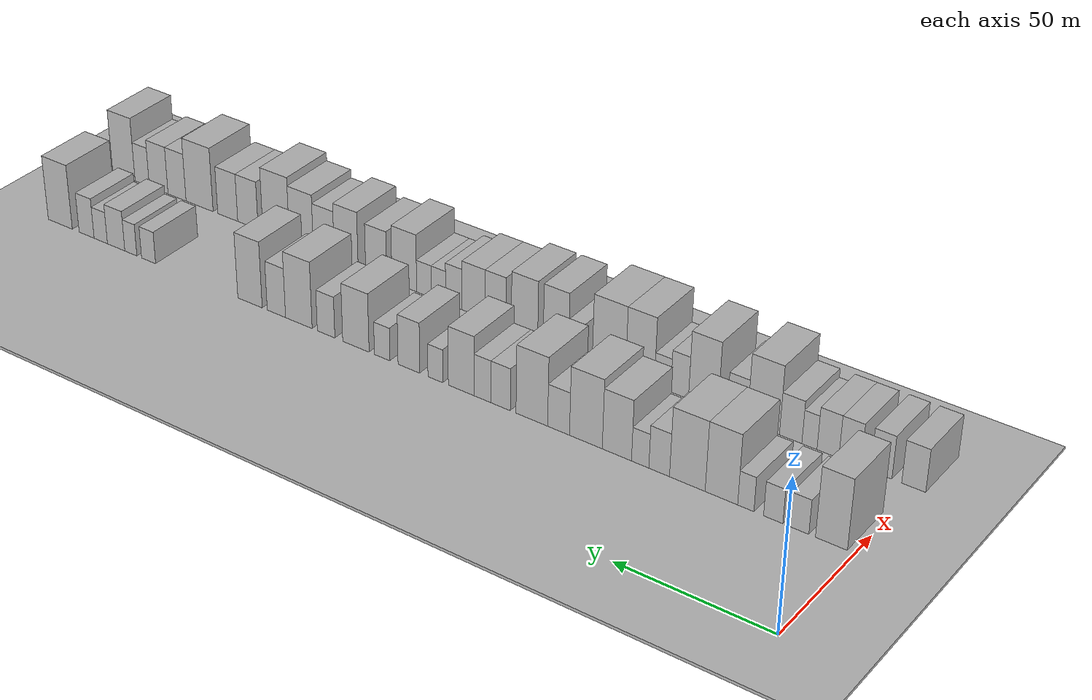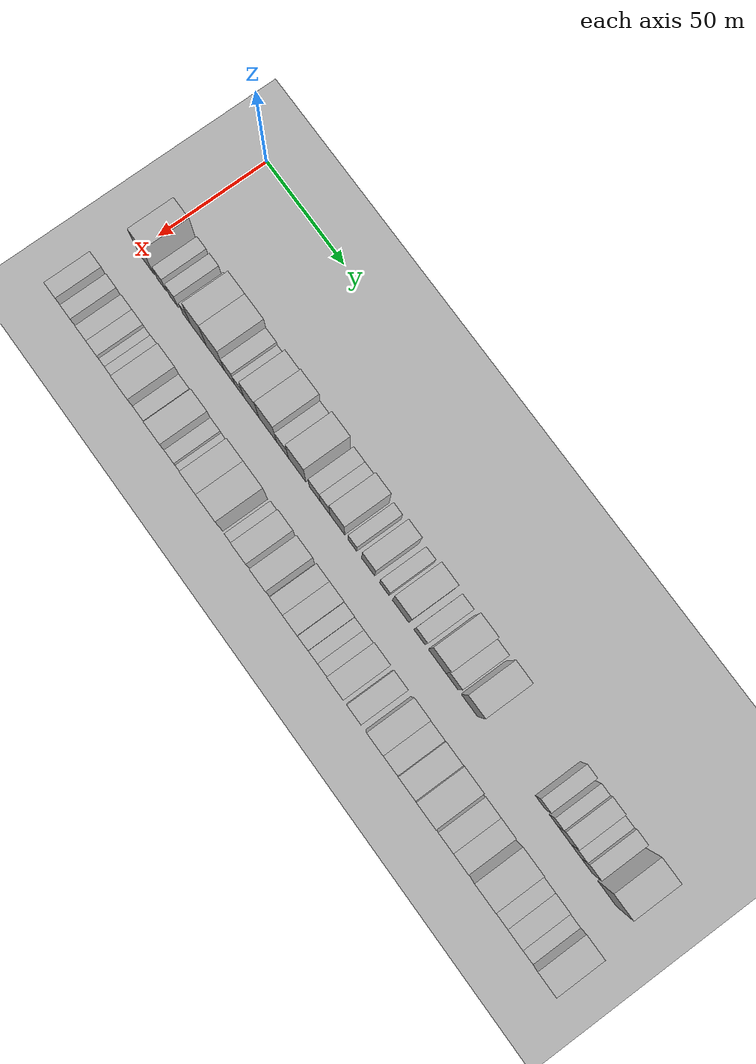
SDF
<sdf version="1.6">
 <world name="default">
  <include><name>ground_plane_1</name><uri>model://HANNAS_ground_plane</uri></include>
  <include>
   <name>ground_plane_2</name>
   <uri>model://HANNAS_ground_plane</uri>
   <pose>100 0 0  0 0 0</pose>
  </include>
  <model name="building_33">
   <static>1</static>
   <pose>50.0000 6.8137 0 0.000000 0.000000 0.000000</pose>
   <link name="link">
    <pose>0 0 12.00 0 0 0</pose>
    <collision name="collision"><geometry><box><size>20.0000 9.6309 24.0000</size></box></geometry></collision>
    <visual name="visual">
     <cast_shadows>0</cast_shadows>
     <geometry><box><size>20.0000 9.6309 24.0000</size></box></geometry>
     <material>
      <script>
       <uri>model://HANNAS_wall/materials/scripts</uri>
       <uri>model://HANNAS_wall/materials/textures</uri>
       <name>vrc/HANNAS_wall</name>
      </script>
     </material>
    </visual>
   </link>
  </model>
  <model name="building_34">
   <static>1</static>
   <pose>50.0000 16.5989 0 0.000000 0.000000 0.000000</pose>
   <link name="link">
    <pose>0 0 6.00 0 0 0</pose>
    <collision name="collision"><geometry><box><size>20.0000 5.9396 12.0000</size></box></geometry></collision>
    <visual name="visual">
     <cast_shadows>0</cast_shadows>
     <geometry><box><size>20.0000 5.9396 12.0000</size></box></geometry>
     <material>
      <script>
       <uri>model://HANNAS_wall/materials/scripts</uri>
       <uri>model://HANNAS_wall/materials/textures</uri>
       <name>vrc/HANNAS_wall</name>
      </script>
     </material>
    </visual>
   </link>
  </model>
  <model name="building_35">
   <static>1</static>
   <pose>50.0000 24.5492 0 0.000000 0.000000 0.000000</pose>
   <link name="link">
    <pose>0 0 6.00 0 0 0</pose>
    <collision name="collision"><geometry><box><size>20.0000 5.9609 12.0000</size></box></geometry></collision>
    <visual name="visual">
     <cast_shadows>0</cast_shadows>
     <geometry><box><size>20.0000 5.9609 12.0000</size></box></geometry>
     <material>
      <script>
       <uri>model://HANNAS_wall/materials/scripts</uri>
       <uri>model://HANNAS_wall/materials/textures</uri>
       <name>vrc/HANNAS_wall</name>
      </script>
     </material>
    </visual>
   </link>
  </model>
  <model name="building_36">
   <static>1</static>
   <pose>50.0000 33.0707 0 0.000000 0.000000 0.000000</pose>
   <link name="link">
    <pose>0 0 6.00 0 0 0</pose>
    <collision name="collision"><geometry><box><size>20.0000 5.0821 12.0000</size></box></geometry></collision>
    <visual name="visual">
     <cast_shadows>0</cast_shadows>
     <geometry><box><size>20.0000 5.0821 12.0000</size></box></geometry>
     <material>
      <script>
       <uri>model://HANNAS_wall/materials/scripts</uri>
       <uri>model://HANNAS_wall/materials/textures</uri>
       <name>vrc/HANNAS_wall</name>
      </script>
     </material>
    </visual>
   </link>
  </model>
  <model name="building_37">
   <static>1</static>
   <pose>50.0000 40.7650 0 0.000000 0.000000 0.000000</pose>
   <link name="link">
    <pose>0 0 12.00 0 0 0</pose>
    <collision name="collision"><geometry><box><size>20.0000 10.3065 24.0000</size></box></geometry></collision>
    <visual name="visual">
     <cast_shadows>0</cast_shadows>
     <geometry><box><size>20.0000 10.3065 24.0000</size></box></geometry>
     <material>
      <script>
       <uri>model://HANNAS_wall/materials/scripts</uri>
       <uri>model://HANNAS_wall/materials/textures</uri>
       <name>vrc/HANNAS_wall</name>
      </script>
     </material>
    </visual>
   </link>
  </model>
  <model name="building_38">
   <static>1</static>
   <pose>50.0000 51.6528 0 0.000000 0.000000 0.000000</pose>
   <link name="link">
    <pose>0 0 12.00 0 0 0</pose>
    <collision name="collision"><geometry><box><size>20.0000 11.4691 24.0000</size></box></geometry></collision>
    <visual name="visual">
     <cast_shadows>0</cast_shadows>
     <geometry><box><size>20.0000 11.4691 24.0000</size></box></geometry>
     <material>
      <script>
       <uri>model://HANNAS_wall/materials/scripts</uri>
       <uri>model://HANNAS_wall/materials/textures</uri>
       <name>vrc/HANNAS_wall</name>
      </script>
     </material>
    </visual>
   </link>
  </model>
  <model name="building_39">
   <static>1</static>
   <pose>50.0000 60.7605 0 0.000000 0.000000 0.000000</pose>
   <link name="link">
    <pose>0 0 7.50 0 0 0</pose>
    <collision name="collision"><geometry><box><size>20.0000 6.7464 15.0000</size></box></geometry></collision>
    <visual name="visual">
     <cast_shadows>0</cast_shadows>
     <geometry><box><size>20.0000 6.7464 15.0000</size></box></geometry>
     <material>
      <script>
       <uri>model://HANNAS_wall/materials/scripts</uri>
       <uri>model://HANNAS_wall/materials/textures</uri>
       <name>vrc/HANNAS_wall</name>
      </script>
     </material>
    </visual>
   </link>
  </model>
  <model name="building_40">
   <static>1</static>
   <pose>50.0000 66.9853 0 0.000000 0.000000 0.000000</pose>
   <link name="link">
    <pose>0 0 6.00 0 0 0</pose>
    <collision name="collision"><geometry><box><size>20.0000 5.7031 12.0000</size></box></geometry></collision>
    <visual name="visual">
     <cast_shadows>0</cast_shadows>
     <geometry><box><size>20.0000 5.7031 12.0000</size></box></geometry>
     <material>
      <script>
       <uri>model://HANNAS_wall/materials/scripts</uri>
       <uri>model://HANNAS_wall/materials/textures</uri>
       <name>vrc/HANNAS_wall</name>
      </script>
     </material>
    </visual>
   </link>
  </model>
  <model name="building_41">
   <static>1</static>
   <pose>50.0000 74.7066 0 0.000000 0.000000 0.000000</pose>
   <link name="link">
    <pose>0 0 10.50 0 0 0</pose>
    <collision name="collision"><geometry><box><size>20.0000 9.7396 21.0000</size></box></geometry></collision>
    <visual name="visual">
     <cast_shadows>0</cast_shadows>
     <geometry><box><size>20.0000 9.7396 21.0000</size></box></geometry>
     <material>
      <script>
       <uri>model://HANNAS_wall/materials/scripts</uri>
       <uri>model://HANNAS_wall/materials/textures</uri>
       <name>vrc/HANNAS_wall</name>
      </script>
     </material>
    </visual>
   </link>
  </model>
  <model name="building_42">
   <static>1</static>
   <pose>50.0000 85.1169 0 0.000000 0.000000 0.000000</pose>
   <link name="link">
    <pose>0 0 12.00 0 0 0</pose>
    <collision name="collision"><geometry><box><size>20.0000 11.0810 24.0000</size></box></geometry></collision>
    <visual name="visual">
     <cast_shadows>0</cast_shadows>
     <geometry><box><size>20.0000 11.0810 24.0000</size></box></geometry>
     <material>
      <script>
       <uri>model://HANNAS_wall/materials/scripts</uri>
       <uri>model://HANNAS_wall/materials/textures</uri>
       <name>vrc/HANNAS_wall</name>
      </script>
     </material>
    </visual>
   </link>
  </model>
  <model name="building_43">
   <static>1</static>
   <pose>50.0000 94.4049 0 0.000000 0.000000 0.000000</pose>
   <link name="link">
    <pose>0 0 7.50 0 0 0</pose>
    <collision name="collision"><geometry><box><size>20.0000 7.4949 15.0000</size></box></geometry></collision>
    <visual name="visual">
     <cast_shadows>0</cast_shadows>
     <geometry><box><size>20.0000 7.4949 15.0000</size></box></geometry>
     <material>
      <script>
       <uri>model://HANNAS_wall/materials/scripts</uri>
       <uri>model://HANNAS_wall/materials/textures</uri>
       <name>vrc/HANNAS_wall</name>
      </script>
     </material>
    </visual>
   </link>
  </model>
  <model name="building_44">
   <static>1</static>
   <pose>50.0000 103.6315 0 0.000000 0.000000 0.000000</pose>
   <link name="link">
    <pose>0 0 12.00 0 0 0</pose>
    <collision name="collision"><geometry><box><size>20.0000 10.9583 24.0000</size></box></geometry></collision>
    <visual name="visual">
     <cast_shadows>0</cast_shadows>
     <geometry><box><size>20.0000 10.9583 24.0000</size></box></geometry>
     <material>
      <script>
       <uri>model://HANNAS_wall/materials/scripts</uri>
       <uri>model://HANNAS_wall/materials/textures</uri>
       <name>vrc/HANNAS_wall</name>
      </script>
     </material>
    </visual>
   </link>
  </model>
  <model name="building_45">
   <static>1</static>
   <pose>50.0000 114.5147 0 0.000000 0.000000 0.000000</pose>
   <link name="link">
    <pose>0 0 7.50 0 0 0</pose>
    <collision name="collision"><geometry><box><size>20.0000 6.8081 15.0000</size></box></geometry></collision>
    <visual name="visual">
     <cast_shadows>0</cast_shadows>
     <geometry><box><size>20.0000 6.8081 15.0000</size></box></geometry>
     <material>
      <script>
       <uri>model://HANNAS_wall/materials/scripts</uri>
       <uri>model://HANNAS_wall/materials/textures</uri>
       <name>vrc/HANNAS_wall</name>
      </script>
     </material>
    </visual>
   </link>
  </model>
  <model name="building_46">
   <static>1</static>
   <pose>50.0000 120.9398 0 0.000000 0.000000 0.000000</pose>
   <link name="link">
    <pose>0 0 7.50 0 0 0</pose>
    <collision name="collision"><geometry><box><size>20.0000 6.0420 15.0000</size></box></geometry></collision>
    <visual name="visual">
     <cast_shadows>0</cast_shadows>
     <geometry><box><size>20.0000 6.0420 15.0000</size></box></geometry>
     <material>
      <script>
       <uri>model://HANNAS_wall/materials/scripts</uri>
       <uri>model://HANNAS_wall/materials/textures</uri>
       <name>vrc/HANNAS_wall</name>
      </script>
     </material>
    </visual>
   </link>
  </model>
  <model name="building_47">
   <static>1</static>
   <pose>50.0000 128.5634 0 0.000000 0.000000 0.000000</pose>
   <link name="link">
    <pose>0 0 10.50 0 0 0</pose>
    <collision name="collision"><geometry><box><size>20.0000 9.2053 21.0000</size></box></geometry></collision>
    <visual name="visual">
     <cast_shadows>0</cast_shadows>
     <geometry><box><size>20.0000 9.2053 21.0000</size></box></geometry>
     <material>
      <script>
       <uri>model://HANNAS_wall/materials/scripts</uri>
       <uri>model://HANNAS_wall/materials/textures</uri>
       <name>vrc/HANNAS_wall</name>
      </script>
     </material>
    </visual>
   </link>
  </model>
  <model name="building_48">
   <static>1</static>
   <pose>50.0000 137.8707 0 0.000000 0.000000 0.000000</pose>
   <link name="link">
    <pose>0 0 6.00 0 0 0</pose>
    <collision name="collision"><geometry><box><size>20.0000 5.4094 12.0000</size></box></geometry></collision>
    <visual name="visual">
     <cast_shadows>0</cast_shadows>
     <geometry><box><size>20.0000 5.4094 12.0000</size></box></geometry>
     <material>
      <script>
       <uri>model://HANNAS_wall/materials/scripts</uri>
       <uri>model://HANNAS_wall/materials/textures</uri>
       <name>vrc/HANNAS_wall</name>
      </script>
     </material>
    </visual>
   </link>
  </model>
  <model name="building_49">
   <static>1</static>
   <pose>50.0000 147.5816 0 0.000000 0.000000 0.000000</pose>
   <link name="link">
    <pose>0 0 9.00 0 0 0</pose>
    <collision name="collision"><geometry><box><size>20.0000 8.0123 18.0000</size></box></geometry></collision>
    <visual name="visual">
     <cast_shadows>0</cast_shadows>
     <geometry><box><size>20.0000 8.0123 18.0000</size></box></geometry>
     <material>
      <script>
       <uri>model://HANNAS_wall/materials/scripts</uri>
       <uri>model://HANNAS_wall/materials/textures</uri>
       <name>vrc/HANNAS_wall</name>
      </script>
     </material>
    </visual>
   </link>
  </model>
  <model name="building_50">
   <static>1</static>
   <pose>50.0000 157.5014 0 0.000000 0.000000 0.000000</pose>
   <link name="link">
    <pose>0 0 6.00 0 0 0</pose>
    <collision name="collision"><geometry><box><size>20.0000 5.8274 12.0000</size></box></geometry></collision>
    <visual name="visual">
     <cast_shadows>0</cast_shadows>
     <geometry><box><size>20.0000 5.8274 12.0000</size></box></geometry>
     <material>
      <script>
       <uri>model://HANNAS_wall/materials/scripts</uri>
       <uri>model://HANNAS_wall/materials/textures</uri>
       <name>vrc/HANNAS_wall</name>
      </script>
     </material>
    </visual>
   </link>
  </model>
  <model name="building_51">
   <static>1</static>
   <pose>50.0000 167.4169 0 0.000000 0.000000 0.000000</pose>
   <link name="link">
    <pose>0 0 10.50 0 0 0</pose>
    <collision name="collision"><geometry><box><size>20.0000 10.0036 21.0000</size></box></geometry></collision>
    <visual name="visual">
     <cast_shadows>0</cast_shadows>
     <geometry><box><size>20.0000 10.0036 21.0000</size></box></geometry>
     <material>
      <script>
       <uri>model://HANNAS_wall/materials/scripts</uri>
       <uri>model://HANNAS_wall/materials/textures</uri>
       <name>vrc/HANNAS_wall</name>
      </script>
     </material>
    </visual>
   </link>
  </model>
  <model name="building_52">
   <static>1</static>
   <pose>50.0000 178.7992 0 0.000000 0.000000 0.000000</pose>
   <link name="link">
    <pose>0 0 7.50 0 0 0</pose>
    <collision name="collision"><geometry><box><size>20.0000 6.7609 15.0000</size></box></geometry></collision>
    <visual name="visual">
     <cast_shadows>0</cast_shadows>
     <geometry><box><size>20.0000 6.7609 15.0000</size></box></geometry>
     <material>
      <script>
       <uri>model://HANNAS_wall/materials/scripts</uri>
       <uri>model://HANNAS_wall/materials/textures</uri>
       <name>vrc/HANNAS_wall</name>
      </script>
     </material>
    </visual>
   </link>
  </model>
  <model name="building_53">
   <static>1</static>
   <pose>50.0000 189.3770 0 0.000000 0.000000 0.000000</pose>
   <link name="link">
    <pose>0 0 12.00 0 0 0</pose>
    <collision name="collision"><geometry><box><size>20.0000 10.3947 24.0000</size></box></geometry></collision>
    <visual name="visual">
     <cast_shadows>0</cast_shadows>
     <geometry><box><size>20.0000 10.3947 24.0000</size></box></geometry>
     <material>
      <script>
       <uri>model://HANNAS_wall/materials/scripts</uri>
       <uri>model://HANNAS_wall/materials/textures</uri>
       <name>vrc/HANNAS_wall</name>
      </script>
     </material>
    </visual>
   </link>
  </model>
  <model name="building_54">
   <static>1</static>
   <pose>50.0000 198.1930 0 0.000000 0.000000 0.000000</pose>
   <link name="link">
    <pose>0 0 9.00 0 0 0</pose>
    <collision name="collision"><geometry><box><size>20.0000 7.2373 18.0000</size></box></geometry></collision>
    <visual name="visual">
     <cast_shadows>0</cast_shadows>
     <geometry><box><size>20.0000 7.2373 18.0000</size></box></geometry>
     <material>
      <script>
       <uri>model://HANNAS_wall/materials/scripts</uri>
       <uri>model://HANNAS_wall/materials/textures</uri>
       <name>vrc/HANNAS_wall</name>
      </script>
     </material>
    </visual>
   </link>
  </model>
  <model name="building_55">
   <static>1</static>
   <pose>50.0000 208.6920 0 0.000000 0.000000 0.000000</pose>
   <link name="link">
    <pose>0 0 12.00 0 0 0</pose>
    <collision name="collision"><geometry><box><size>20.0000 9.7608 24.0000</size></box></geometry></collision>
    <visual name="visual">
     <cast_shadows>0</cast_shadows>
     <geometry><box><size>20.0000 9.7608 24.0000</size></box></geometry>
     <material>
      <script>
       <uri>model://HANNAS_wall/materials/scripts</uri>
       <uri>model://HANNAS_wall/materials/textures</uri>
       <name>vrc/HANNAS_wall</name>
      </script>
     </material>
    </visual>
   </link>
  </model>
  <model name="building_56">
   <static>1</static>
   <pose>50.0000 250.4805 0 0.000000 0.000000 0.000000</pose>
   <link name="link">
    <pose>0 0 6.00 0 0 0</pose>
    <collision name="collision"><geometry><box><size>20.0000 5.9388 12.0000</size></box></geometry></collision>
    <visual name="visual">
     <cast_shadows>0</cast_shadows>
     <geometry><box><size>20.0000 5.9388 12.0000</size></box></geometry>
     <material>
      <script>
       <uri>model://HANNAS_wall/materials/scripts</uri>
       <uri>model://HANNAS_wall/materials/textures</uri>
       <name>vrc/HANNAS_wall</name>
      </script>
     </material>
    </visual>
   </link>
  </model>
  <model name="building_57">
   <static>1</static>
   <pose>50.0000 258.0265 0 0.000000 0.000000 0.000000</pose>
   <link name="link">
    <pose>0 0 6.00 0 0 0</pose>
    <collision name="collision"><geometry><box><size>20.0000 5.1532 12.0000</size></box></geometry></collision>
    <visual name="visual">
     <cast_shadows>0</cast_shadows>
     <geometry><box><size>20.0000 5.1532 12.0000</size></box></geometry>
     <material>
      <script>
       <uri>model://HANNAS_wall/materials/scripts</uri>
       <uri>model://HANNAS_wall/materials/textures</uri>
       <name>vrc/HANNAS_wall</name>
      </script>
     </material>
    </visual>
   </link>
  </model>
  <model name="building_58">
   <static>1</static>
   <pose>50.0000 264.3481 0 0.000000 0.000000 0.000000</pose>
   <link name="link">
    <pose>0 0 7.50 0 0 0</pose>
    <collision name="collision"><geometry><box><size>20.0000 7.4902 15.0000</size></box></geometry></collision>
    <visual name="visual">
     <cast_shadows>0</cast_shadows>
     <geometry><box><size>20.0000 7.4902 15.0000</size></box></geometry>
     <material>
      <script>
       <uri>model://HANNAS_wall/materials/scripts</uri>
       <uri>model://HANNAS_wall/materials/textures</uri>
       <name>vrc/HANNAS_wall</name>
      </script>
     </material>
    </visual>
   </link>
  </model>
  <model name="building_59">
   <static>1</static>
   <pose>50.0000 270.9961 0 0.000000 0.000000 0.000000</pose>
   <link name="link">
    <pose>0 0 6.00 0 0 0</pose>
    <collision name="collision"><geometry><box><size>20.0000 5.8058 12.0000</size></box></geometry></collision>
    <visual name="visual">
     <cast_shadows>0</cast_shadows>
     <geometry><box><size>20.0000 5.8058 12.0000</size></box></geometry>
     <material>
      <script>
       <uri>model://HANNAS_wall/materials/scripts</uri>
       <uri>model://HANNAS_wall/materials/textures</uri>
       <name>vrc/HANNAS_wall</name>
      </script>
     </material>
    </visual>
   </link>
  </model>
  <model name="building_60">
   <static>1</static>
   <pose>50.0000 277.1734 0 0.000000 0.000000 0.000000</pose>
   <link name="link">
    <pose>0 0 7.50 0 0 0</pose>
    <collision name="collision"><geometry><box><size>20.0000 6.5488 15.0000</size></box></geometry></collision>
    <visual name="visual">
     <cast_shadows>0</cast_shadows>
     <geometry><box><size>20.0000 6.5488 15.0000</size></box></geometry>
     <material>
      <script>
       <uri>model://HANNAS_wall/materials/scripts</uri>
       <uri>model://HANNAS_wall/materials/textures</uri>
       <name>vrc/HANNAS_wall</name>
      </script>
     </material>
    </visual>
   </link>
  </model>
  <model name="building_61">
   <static>1</static>
   <pose>50.0000 288.7738 0 0.000000 0.000000 0.000000</pose>
   <link name="link">
    <pose>0 0 12.00 0 0 0</pose>
    <collision name="collision"><geometry><box><size>20.0000 10.6521 24.0000</size></box></geometry></collision>
    <visual name="visual">
     <cast_shadows>0</cast_shadows>
     <geometry><box><size>20.0000 10.6521 24.0000</size></box></geometry>
     <material>
      <script>
       <uri>model://HANNAS_wall/materials/scripts</uri>
       <uri>model://HANNAS_wall/materials/textures</uri>
       <name>vrc/HANNAS_wall</name>
      </script>
     </material>
    </visual>
   </link>
  </model>
  <model name="building_94">
   <static>1</static>
   <pose>85.0000 0.4489 0 0.000000 0.000000 0.000000</pose>
   <link name="link">
    <pose>0 0 7.50 0 0 0</pose>
    <collision name="collision"><geometry><box><size>20.0000 7.3271 15.0000</size></box></geometry></collision>
    <visual name="visual">
     <cast_shadows>0</cast_shadows>
     <geometry><box><size>20.0000 7.3271 15.0000</size></box></geometry>
     <material>
      <script>
       <uri>model://HANNAS_wall/materials/scripts</uri>
       <uri>model://HANNAS_wall/materials/textures</uri>
       <name>vrc/HANNAS_wall</name>
      </script>
     </material>
    </visual>
   </link>
  </model>
  <model name="building_95">
   <static>1</static>
   <pose>85.0000 10.4039 0 0.000000 0.000000 0.000000</pose>
   <link name="link">
    <pose>0 0 7.50 0 0 0</pose>
    <collision name="collision"><geometry><box><size>20.0000 6.5830 15.0000</size></box></geometry></collision>
    <visual name="visual">
     <cast_shadows>0</cast_shadows>
     <geometry><box><size>20.0000 6.5830 15.0000</size></box></geometry>
     <material>
      <script>
       <uri>model://HANNAS_wall/materials/scripts</uri>
       <uri>model://HANNAS_wall/materials/textures</uri>
       <name>vrc/HANNAS_wall</name>
      </script>
     </material>
    </visual>
   </link>
  </model>
  <model name="building_96">
   <static>1</static>
   <pose>85.0000 20.1801 0 0.000000 0.000000 0.000000</pose>
   <link name="link">
    <pose>0 0 7.50 0 0 0</pose>
    <collision name="collision"><geometry><box><size>20.0000 6.9695 15.0000</size></box></geometry></collision>
    <visual name="visual">
     <cast_shadows>0</cast_shadows>
     <geometry><box><size>20.0000 6.9695 15.0000</size></box></geometry>
     <material>
      <script>
       <uri>model://HANNAS_wall/materials/scripts</uri>
       <uri>model://HANNAS_wall/materials/textures</uri>
       <name>vrc/HANNAS_wall</name>
      </script>
     </material>
    </visual>
   </link>
  </model>
  <model name="building_97">
   <static>1</static>
   <pose>85.0000 27.1184 0 0.000000 0.000000 0.000000</pose>
   <link name="link">
    <pose>0 0 7.50 0 0 0</pose>
    <collision name="collision"><geometry><box><size>20.0000 6.9072 15.0000</size></box></geometry></collision>
    <visual name="visual">
     <cast_shadows>0</cast_shadows>
     <geometry><box><size>20.0000 6.9072 15.0000</size></box></geometry>
     <material>
      <script>
       <uri>model://HANNAS_wall/materials/scripts</uri>
       <uri>model://HANNAS_wall/materials/textures</uri>
       <name>vrc/HANNAS_wall</name>
      </script>
     </material>
    </visual>
   </link>
  </model>
  <model name="building_98">
   <static>1</static>
   <pose>85.0000 32.9930 0 0.000000 0.000000 0.000000</pose>
   <link name="link">
    <pose>0 0 6.00 0 0 0</pose>
    <collision name="collision"><geometry><box><size>20.0000 4.8420 12.0000</size></box></geometry></collision>
    <visual name="visual">
     <cast_shadows>0</cast_shadows>
     <geometry><box><size>20.0000 4.8420 12.0000</size></box></geometry>
     <material>
      <script>
       <uri>model://HANNAS_wall/materials/scripts</uri>
       <uri>model://HANNAS_wall/materials/textures</uri>
       <name>vrc/HANNAS_wall</name>
      </script>
     </material>
    </visual>
   </link>
  </model>
  <model name="building_99">
   <static>1</static>
   <pose>85.0000 39.0330 0 0.000000 0.000000 0.000000</pose>
   <link name="link">
    <pose>0 0 7.50 0 0 0</pose>
    <collision name="collision"><geometry><box><size>20.0000 7.2379 15.0000</size></box></geometry></collision>
    <visual name="visual">
     <cast_shadows>0</cast_shadows>
     <geometry><box><size>20.0000 7.2379 15.0000</size></box></geometry>
     <material>
      <script>
       <uri>model://HANNAS_wall/materials/scripts</uri>
       <uri>model://HANNAS_wall/materials/textures</uri>
       <name>vrc/HANNAS_wall</name>
      </script>
     </material>
    </visual>
   </link>
  </model>
  <model name="building_100">
   <static>1</static>
   <pose>85.0000 47.8926 0 0.000000 0.000000 0.000000</pose>
   <link name="link">
    <pose>0 0 12.00 0 0 0</pose>
    <collision name="collision"><geometry><box><size>20.0000 10.4815 24.0000</size></box></geometry></collision>
    <visual name="visual">
     <cast_shadows>0</cast_shadows>
     <geometry><box><size>20.0000 10.4815 24.0000</size></box></geometry>
     <material>
      <script>
       <uri>model://HANNAS_wall/materials/scripts</uri>
       <uri>model://HANNAS_wall/materials/textures</uri>
       <name>vrc/HANNAS_wall</name>
      </script>
     </material>
    </visual>
   </link>
  </model>
  <model name="building_101">
   <static>1</static>
   <pose>85.0000 56.4817 0 0.000000 0.000000 0.000000</pose>
   <link name="link">
    <pose>0 0 7.50 0 0 0</pose>
    <collision name="collision"><geometry><box><size>20.0000 6.6966 15.0000</size></box></geometry></collision>
    <visual name="visual">
     <cast_shadows>0</cast_shadows>
     <geometry><box><size>20.0000 6.6966 15.0000</size></box></geometry>
     <material>
      <script>
       <uri>model://HANNAS_wall/materials/scripts</uri>
       <uri>model://HANNAS_wall/materials/textures</uri>
       <name>vrc/HANNAS_wall</name>
      </script>
     </material>
    </visual>
   </link>
  </model>
  <model name="building_102">
   <static>1</static>
   <pose>85.0000 67.8008 0 0.000000 0.000000 0.000000</pose>
   <link name="link">
    <pose>0 0 12.00 0 0 0</pose>
    <collision name="collision"><geometry><box><size>20.0000 9.9417 24.0000</size></box></geometry></collision>
    <visual name="visual">
     <cast_shadows>0</cast_shadows>
     <geometry><box><size>20.0000 9.9417 24.0000</size></box></geometry>
     <material>
      <script>
       <uri>model://HANNAS_wall/materials/scripts</uri>
       <uri>model://HANNAS_wall/materials/textures</uri>
       <name>vrc/HANNAS_wall</name>
      </script>
     </material>
    </visual>
   </link>
  </model>
  <model name="building_103">
   <static>1</static>
   <pose>85.0000 75.7834 0 0.000000 0.000000 0.000000</pose>
   <link name="link">
    <pose>0 0 7.50 0 0 0</pose>
    <collision name="collision"><geometry><box><size>20.0000 6.0234 15.0000</size></box></geometry></collision>
    <visual name="visual">
     <cast_shadows>0</cast_shadows>
     <geometry><box><size>20.0000 6.0234 15.0000</size></box></geometry>
     <material>
      <script>
       <uri>model://HANNAS_wall/materials/scripts</uri>
       <uri>model://HANNAS_wall/materials/textures</uri>
       <name>vrc/HANNAS_wall</name>
      </script>
     </material>
    </visual>
   </link>
  </model>
  <model name="building_104">
   <static>1</static>
   <pose>85.0000 81.6017 0 0.000000 0.000000 0.000000</pose>
   <link name="link">
    <pose>0 0 6.00 0 0 0</pose>
    <collision name="collision"><geometry><box><size>20.0000 5.6132 12.0000</size></box></geometry></collision>
    <visual name="visual">
     <cast_shadows>0</cast_shadows>
     <geometry><box><size>20.0000 5.6132 12.0000</size></box></geometry>
     <material>
      <script>
       <uri>model://HANNAS_wall/materials/scripts</uri>
       <uri>model://HANNAS_wall/materials/textures</uri>
       <name>vrc/HANNAS_wall</name>
      </script>
     </material>
    </visual>
   </link>
  </model>
  <model name="building_105">
   <static>1</static>
   <pose>85.0000 89.3883 0 0.000000 0.000000 0.000000</pose>
   <link name="link">
    <pose>0 0 12.00 0 0 0</pose>
    <collision name="collision"><geometry><box><size>20.0000 9.9600 24.0000</size></box></geometry></collision>
    <visual name="visual">
     <cast_shadows>0</cast_shadows>
     <geometry><box><size>20.0000 9.9600 24.0000</size></box></geometry>
     <material>
      <script>
       <uri>model://HANNAS_wall/materials/scripts</uri>
       <uri>model://HANNAS_wall/materials/textures</uri>
       <name>vrc/HANNAS_wall</name>
      </script>
     </material>
    </visual>
   </link>
  </model>
  <model name="building_106">
   <static>1</static>
   <pose>85.0000 100.2218 0 0.000000 0.000000 0.000000</pose>
   <link name="link">
    <pose>0 0 12.00 0 0 0</pose>
    <collision name="collision"><geometry><box><size>20.0000 11.7071 24.0000</size></box></geometry></collision>
    <visual name="visual">
     <cast_shadows>0</cast_shadows>
     <geometry><box><size>20.0000 11.7071 24.0000</size></box></geometry>
     <material>
      <script>
       <uri>model://HANNAS_wall/materials/scripts</uri>
       <uri>model://HANNAS_wall/materials/textures</uri>
       <name>vrc/HANNAS_wall</name>
      </script>
     </material>
    </visual>
   </link>
  </model>
  <model name="building_107">
   <static>1</static>
   <pose>85.0000 111.8036 0 0.000000 0.000000 0.000000</pose>
   <link name="link">
    <pose>0 0 6.00 0 0 0</pose>
    <collision name="collision"><geometry><box><size>20.0000 5.4563 12.0000</size></box></geometry></collision>
    <visual name="visual">
     <cast_shadows>0</cast_shadows>
     <geometry><box><size>20.0000 5.4563 12.0000</size></box></geometry>
     <material>
      <script>
       <uri>model://HANNAS_wall/materials/scripts</uri>
       <uri>model://HANNAS_wall/materials/textures</uri>
       <name>vrc/HANNAS_wall</name>
      </script>
     </material>
    </visual>
   </link>
  </model>
  <model name="building_108">
   <static>1</static>
   <pose>85.0000 119.0933 0 0.000000 0.000000 0.000000</pose>
   <link name="link">
    <pose>0 0 10.50 0 0 0</pose>
    <collision name="collision"><geometry><box><size>20.0000 9.1231 21.0000</size></box></geometry></collision>
    <visual name="visual">
     <cast_shadows>0</cast_shadows>
     <geometry><box><size>20.0000 9.1231 21.0000</size></box></geometry>
     <material>
      <script>
       <uri>model://HANNAS_wall/materials/scripts</uri>
       <uri>model://HANNAS_wall/materials/textures</uri>
       <name>vrc/HANNAS_wall</name>
      </script>
     </material>
    </visual>
   </link>
  </model>
  <model name="building_109">
   <static>1</static>
   <pose>85.0000 130.4917 0 0.000000 0.000000 0.000000</pose>
   <link name="link">
    <pose>0 0 10.50 0 0 0</pose>
    <collision name="collision"><geometry><box><size>20.0000 9.6737 21.0000</size></box></geometry></collision>
    <visual name="visual">
     <cast_shadows>0</cast_shadows>
     <geometry><box><size>20.0000 9.6737 21.0000</size></box></geometry>
     <material>
      <script>
       <uri>model://HANNAS_wall/materials/scripts</uri>
       <uri>model://HANNAS_wall/materials/textures</uri>
       <name>vrc/HANNAS_wall</name>
      </script>
     </material>
    </visual>
   </link>
  </model>
  <model name="building_110">
   <static>1</static>
   <pose>85.0000 141.1935 0 0.000000 0.000000 0.000000</pose>
   <link name="link">
    <pose>0 0 9.00 0 0 0</pose>
    <collision name="collision"><geometry><box><size>20.0000 7.7298 18.0000</size></box></geometry></collision>
    <visual name="visual">
     <cast_shadows>0</cast_shadows>
     <geometry><box><size>20.0000 7.7298 18.0000</size></box></geometry>
     <material>
      <script>
       <uri>model://HANNAS_wall/materials/scripts</uri>
       <uri>model://HANNAS_wall/materials/textures</uri>
       <name>vrc/HANNAS_wall</name>
      </script>
     </material>
    </visual>
   </link>
  </model>
  <model name="building_111">
   <static>1</static>
   <pose>85.0000 149.3701 0 0.000000 0.000000 0.000000</pose>
   <link name="link">
    <pose>0 0 9.00 0 0 0</pose>
    <collision name="collision"><geometry><box><size>20.0000 8.6235 18.0000</size></box></geometry></collision>
    <visual name="visual">
     <cast_shadows>0</cast_shadows>
     <geometry><box><size>20.0000 8.6235 18.0000</size></box></geometry>
     <material>
      <script>
       <uri>model://HANNAS_wall/materials/scripts</uri>
       <uri>model://HANNAS_wall/materials/textures</uri>
       <name>vrc/HANNAS_wall</name>
      </script>
     </material>
    </visual>
   </link>
  </model>
  <model name="building_112">
   <static>1</static>
   <pose>85.0000 156.8051 0 0.000000 0.000000 0.000000</pose>
   <link name="link">
    <pose>0 0 7.50 0 0 0</pose>
    <collision name="collision"><geometry><box><size>20.0000 6.2465 15.0000</size></box></geometry></collision>
    <visual name="visual">
     <cast_shadows>0</cast_shadows>
     <geometry><box><size>20.0000 6.2465 15.0000</size></box></geometry>
     <material>
      <script>
       <uri>model://HANNAS_wall/materials/scripts</uri>
       <uri>model://HANNAS_wall/materials/textures</uri>
       <name>vrc/HANNAS_wall</name>
      </script>
     </material>
    </visual>
   </link>
  </model>
  <model name="building_113">
   <static>1</static>
   <pose>85.0000 162.6494 0 0.000000 0.000000 0.000000</pose>
   <link name="link">
    <pose>0 0 6.00 0 0 0</pose>
    <collision name="collision"><geometry><box><size>20.0000 5.4420 12.0000</size></box></geometry></collision>
    <visual name="visual">
     <cast_shadows>0</cast_shadows>
     <geometry><box><size>20.0000 5.4420 12.0000</size></box></geometry>
     <material>
      <script>
       <uri>model://HANNAS_wall/materials/scripts</uri>
       <uri>model://HANNAS_wall/materials/textures</uri>
       <name>vrc/HANNAS_wall</name>
      </script>
     </material>
    </visual>
   </link>
  </model>
  <model name="building_114">
   <static>1</static>
   <pose>85.0000 168.2085 0 0.000000 0.000000 0.000000</pose>
   <link name="link">
    <pose>0 0 6.00 0 0 0</pose>
    <collision name="collision"><geometry><box><size>20.0000 5.6762 12.0000</size></box></geometry></collision>
    <visual name="visual">
     <cast_shadows>0</cast_shadows>
     <geometry><box><size>20.0000 5.6762 12.0000</size></box></geometry>
     <material>
      <script>
       <uri>model://HANNAS_wall/materials/scripts</uri>
       <uri>model://HANNAS_wall/materials/textures</uri>
       <name>vrc/HANNAS_wall</name>
      </script>
     </material>
    </visual>
   </link>
  </model>
  <model name="building_115">
   <static>1</static>
   <pose>85.0000 175.8445 0 0.000000 0.000000 0.000000</pose>
   <link name="link">
    <pose>0 0 10.50 0 0 0</pose>
    <collision name="collision"><geometry><box><size>20.0000 9.5957 21.0000</size></box></geometry></collision>
    <visual name="visual">
     <cast_shadows>0</cast_shadows>
     <geometry><box><size>20.0000 9.5957 21.0000</size></box></geometry>
     <material>
      <script>
       <uri>model://HANNAS_wall/materials/scripts</uri>
       <uri>model://HANNAS_wall/materials/textures</uri>
       <name>vrc/HANNAS_wall</name>
      </script>
     </material>
    </visual>
   </link>
  </model>
  <model name="building_116">
   <static>1</static>
   <pose>85.0000 186.8129 0 0.000000 0.000000 0.000000</pose>
   <link name="link">
    <pose>0 0 9.00 0 0 0</pose>
    <collision name="collision"><geometry><box><size>20.0000 8.3410 18.0000</size></box></geometry></collision>
    <visual name="visual">
     <cast_shadows>0</cast_shadows>
     <geometry><box><size>20.0000 8.3410 18.0000</size></box></geometry>
     <material>
      <script>
       <uri>model://HANNAS_wall/materials/scripts</uri>
       <uri>model://HANNAS_wall/materials/textures</uri>
       <name>vrc/HANNAS_wall</name>
      </script>
     </material>
    </visual>
   </link>
  </model>
  <model name="building_117">
   <static>1</static>
   <pose>85.0000 198.7458 0 0.000000 0.000000 0.000000</pose>
   <link name="link">
    <pose>0 0 10.50 0 0 0</pose>
    <collision name="collision"><geometry><box><size>20.0000 9.5249 21.0000</size></box></geometry></collision>
    <visual name="visual">
     <cast_shadows>0</cast_shadows>
     <geometry><box><size>20.0000 9.5249 21.0000</size></box></geometry>
     <material>
      <script>
       <uri>model://HANNAS_wall/materials/scripts</uri>
       <uri>model://HANNAS_wall/materials/textures</uri>
       <name>vrc/HANNAS_wall</name>
      </script>
     </material>
    </visual>
   </link>
  </model>
  <model name="building_118">
   <static>1</static>
   <pose>85.0000 207.7532 0 0.000000 0.000000 0.000000</pose>
   <link name="link">
    <pose>0 0 9.00 0 0 0</pose>
    <collision name="collision"><geometry><box><size>20.0000 8.4898 18.0000</size></box></geometry></collision>
    <visual name="visual">
     <cast_shadows>0</cast_shadows>
     <geometry><box><size>20.0000 8.4898 18.0000</size></box></geometry>
     <material>
      <script>
       <uri>model://HANNAS_wall/materials/scripts</uri>
       <uri>model://HANNAS_wall/materials/textures</uri>
       <name>vrc/HANNAS_wall</name>
      </script>
     </material>
    </visual>
   </link>
  </model>
  <model name="building_119">
   <static>1</static>
   <pose>85.0000 216.9206 0 0.000000 0.000000 0.000000</pose>
   <link name="link">
    <pose>0 0 10.50 0 0 0</pose>
    <collision name="collision"><geometry><box><size>20.0000 9.8451 21.0000</size></box></geometry></collision>
    <visual name="visual">
     <cast_shadows>0</cast_shadows>
     <geometry><box><size>20.0000 9.8451 21.0000</size></box></geometry>
     <material>
      <script>
       <uri>model://HANNAS_wall/materials/scripts</uri>
       <uri>model://HANNAS_wall/materials/textures</uri>
       <name>vrc/HANNAS_wall</name>
      </script>
     </material>
    </visual>
   </link>
  </model>
  <model name="building_120">
   <static>1</static>
   <pose>85.0000 227.3646 0 0.000000 0.000000 0.000000</pose>
   <link name="link">
    <pose>0 0 12.00 0 0 0</pose>
    <collision name="collision"><geometry><box><size>20.0000 11.0428 24.0000</size></box></geometry></collision>
    <visual name="visual">
     <cast_shadows>0</cast_shadows>
     <geometry><box><size>20.0000 11.0428 24.0000</size></box></geometry>
     <material>
      <script>
       <uri>model://HANNAS_wall/materials/scripts</uri>
       <uri>model://HANNAS_wall/materials/textures</uri>
       <name>vrc/HANNAS_wall</name>
      </script>
     </material>
    </visual>
   </link>
  </model>
  <model name="building_121">
   <static>1</static>
   <pose>85.0000 239.1945 0 0.000000 0.000000 0.000000</pose>
   <link name="link">
    <pose>0 0 9.00 0 0 0</pose>
    <collision name="collision"><geometry><box><size>20.0000 8.6170 18.0000</size></box></geometry></collision>
    <visual name="visual">
     <cast_shadows>0</cast_shadows>
     <geometry><box><size>20.0000 8.6170 18.0000</size></box></geometry>
     <material>
      <script>
       <uri>model://HANNAS_wall/materials/scripts</uri>
       <uri>model://HANNAS_wall/materials/textures</uri>
       <name>vrc/HANNAS_wall</name>
      </script>
     </material>
    </visual>
   </link>
  </model>
  <model name="building_122">
   <static>1</static>
   <pose>85.0000 247.7622 0 0.000000 0.000000 0.000000</pose>
   <link name="link">
    <pose>0 0 9.00 0 0 0</pose>
    <collision name="collision"><geometry><box><size>20.0000 8.5186 18.0000</size></box></geometry></collision>
    <visual name="visual">
     <cast_shadows>0</cast_shadows>
     <geometry><box><size>20.0000 8.5186 18.0000</size></box></geometry>
     <material>
      <script>
       <uri>model://HANNAS_wall/materials/scripts</uri>
       <uri>model://HANNAS_wall/materials/textures</uri>
       <name>vrc/HANNAS_wall</name>
      </script>
     </material>
    </visual>
   </link>
  </model>
  <model name="building_123">
   <static>1</static>
   <pose>85.0000 259.8830 0 0.000000 0.000000 0.000000</pose>
   <link name="link">
    <pose>0 0 12.00 0 0 0</pose>
    <collision name="collision"><geometry><box><size>20.0000 11.7230 24.0000</size></box></geometry></collision>
    <visual name="visual">
     <cast_shadows>0</cast_shadows>
     <geometry><box><size>20.0000 11.7230 24.0000</size></box></geometry>
     <material>
      <script>
       <uri>model://HANNAS_wall/materials/scripts</uri>
       <uri>model://HANNAS_wall/materials/textures</uri>
       <name>vrc/HANNAS_wall</name>
      </script>
     </material>
    </visual>
   </link>
  </model>
  <model name="building_124">
   <static>1</static>
   <pose>85.0000 269.6958 0 0.000000 0.000000 0.000000</pose>
   <link name="link">
    <pose>0 0 9.00 0 0 0</pose>
    <collision name="collision"><geometry><box><size>20.0000 7.9027 18.0000</size></box></geometry></collision>
    <visual name="visual">
     <cast_shadows>0</cast_shadows>
     <geometry><box><size>20.0000 7.9027 18.0000</size></box></geometry>
     <material>
      <script>
       <uri>model://HANNAS_wall/materials/scripts</uri>
       <uri>model://HANNAS_wall/materials/textures</uri>
       <name>vrc/HANNAS_wall</name>
      </script>
     </material>
    </visual>
   </link>
  </model>
  <model name="building_125">
   <static>1</static>
   <pose>85.0000 277.7881 0 0.000000 0.000000 0.000000</pose>
   <link name="link">
    <pose>0 0 9.00 0 0 0</pose>
    <collision name="collision"><geometry><box><size>20.0000 8.2819 18.0000</size></box></geometry></collision>
    <visual name="visual">
     <cast_shadows>0</cast_shadows>
     <geometry><box><size>20.0000 8.2819 18.0000</size></box></geometry>
     <material>
      <script>
       <uri>model://HANNAS_wall/materials/scripts</uri>
       <uri>model://HANNAS_wall/materials/textures</uri>
       <name>vrc/HANNAS_wall</name>
      </script>
     </material>
    </visual>
   </link>
  </model>
  <model name="building_126">
   <static>1</static>
   <pose>85.0000 285.1051 0 0.000000 0.000000 0.000000</pose>
   <link name="link">
    <pose>0 0 7.50 0 0 0</pose>
    <collision name="collision"><geometry><box><size>20.0000 6.3521 15.0000</size></box></geometry></collision>
    <visual name="visual">
     <cast_shadows>0</cast_shadows>
     <geometry><box><size>20.0000 6.3521 15.0000</size></box></geometry>
     <material>
      <script>
       <uri>model://HANNAS_wall/materials/scripts</uri>
       <uri>model://HANNAS_wall/materials/textures</uri>
       <name>vrc/HANNAS_wall</name>
      </script>
     </material>
    </visual>
   </link>
  </model>
  <model name="building_127">
   <static>1</static>
   <pose>85.0000 293.3341 0 0.000000 0.000000 0.000000</pose>
   <link name="link">
    <pose>0 0 12.00 0 0 0</pose>
    <collision name="collision"><geometry><box><size>20.0000 10.1061 24.0000</size></box></geometry></collision>
    <visual name="visual">
     <cast_shadows>0</cast_shadows>
     <geometry><box><size>20.0000 10.1061 24.0000</size></box></geometry>
     <material>
      <script>
       <uri>model://HANNAS_wall/materials/scripts</uri>
       <uri>model://HANNAS_wall/materials/textures</uri>
       <name>vrc/HANNAS_wall</name>
      </script>
     </material>
    </visual>
   </link>
  </model>
 </world>
</sdf>
